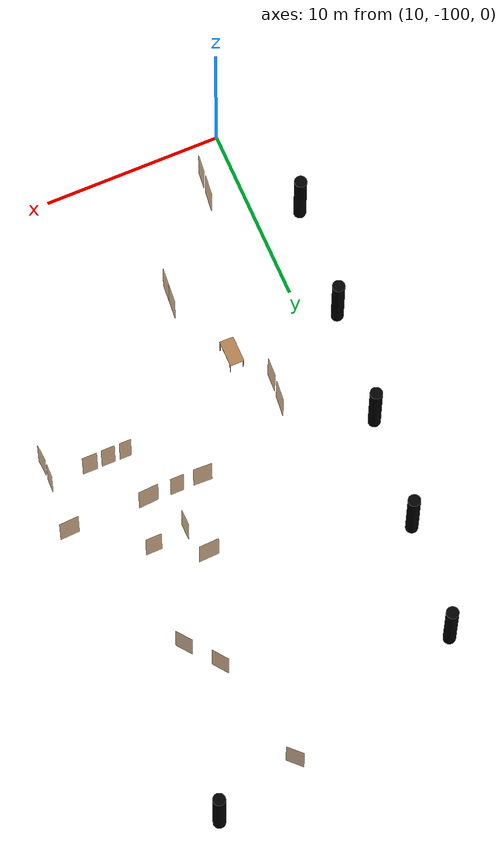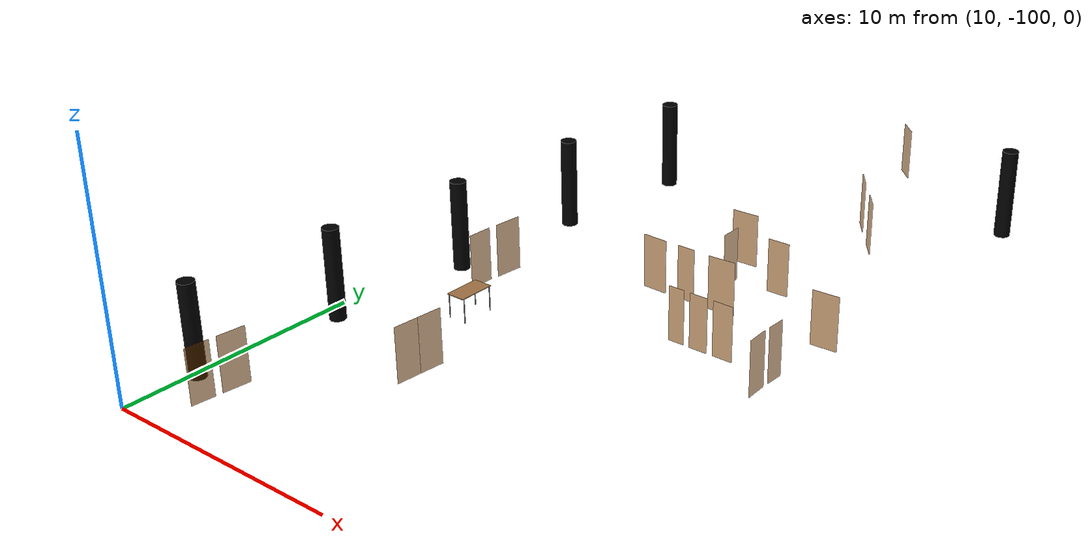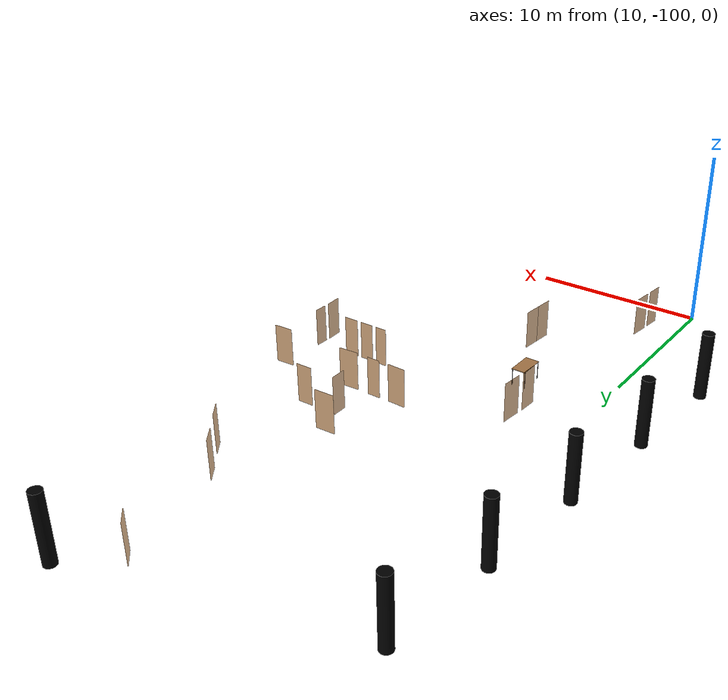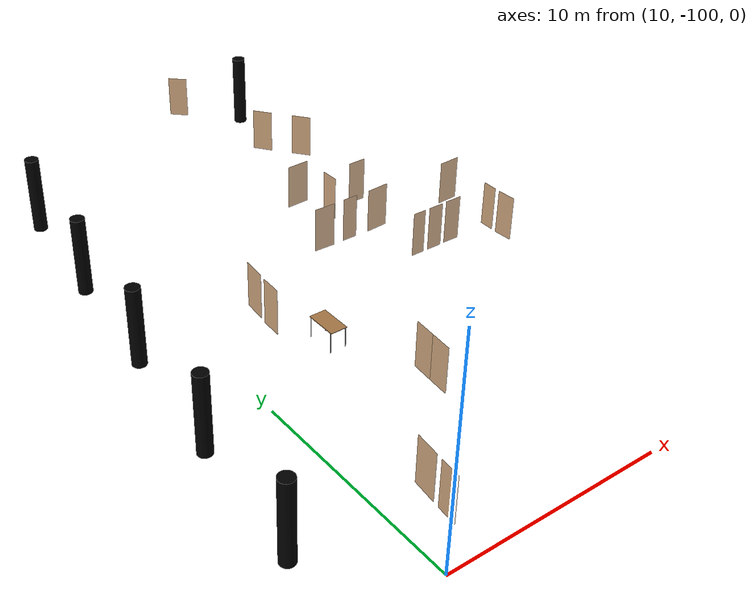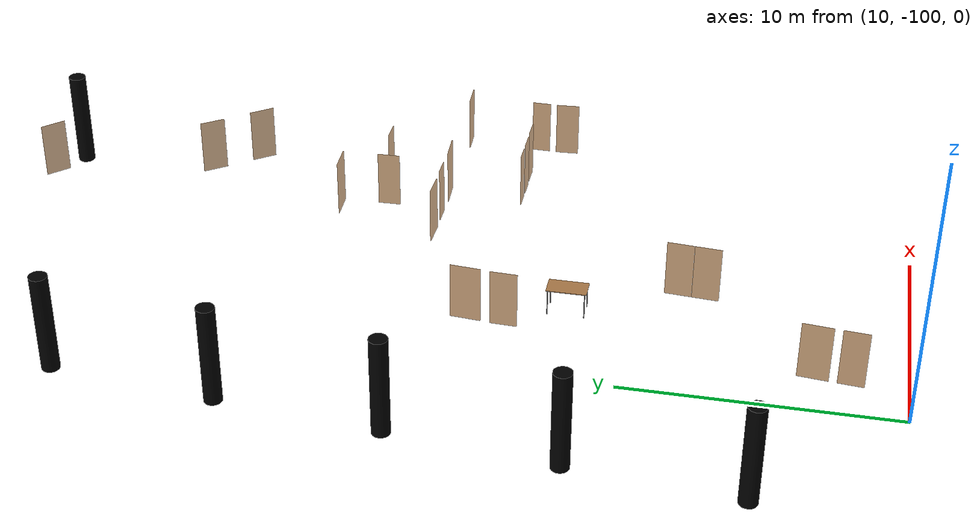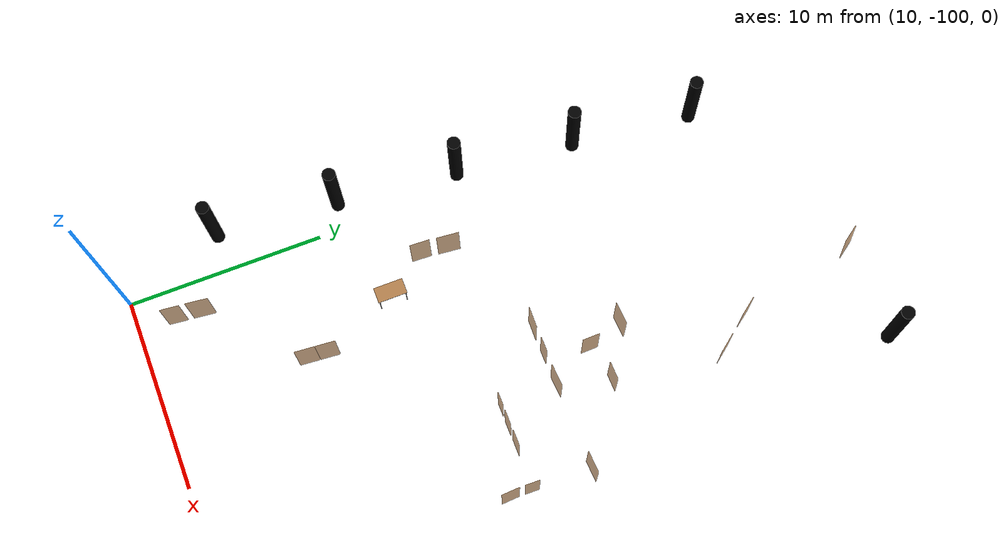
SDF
<sdf version="1.7">
 <world name="world">
  <model name="OpenRobotics/Table">
   <static>1</static>
   <link name="link">
    <collision name="surface">
     <pose>0 0 1 0 -0 0</pose>
     <geometry><box><size>1.5 0.8 0.03</size></box></geometry>
     <surface><friction><ode><mu>0.6</mu><mu2>0.6</mu2></ode></friction></surface>
    </collision>
    <visual name="visual1">
     <pose>0 0 1 0 -0 0</pose>
     <geometry><box><size>1.5 0.8 0.03</size></box></geometry>
     <material>
      <script><uri>file://media/materials/scripts/gazebo.material</uri><name>Gazebo/Wood</name></script>
     </material>
    </visual>
    <collision name="front_left_leg_c">
     <pose>0.68 0.38 0.5 0 -0 0</pose>
     <geometry><cylinder><radius>0.02</radius><length>1</length></cylinder></geometry>
    </collision>
    <visual name="front_left_leg">
     <pose>0.68 0.38 0.5 0 -0 0</pose>
     <geometry><cylinder><radius>0.02</radius><length>1</length></cylinder></geometry>
     <material>
      <script><uri>file://media/materials/scripts/gazebo.material</uri><name>Gazebo/Grey</name></script>
     </material>
    </visual>
    <collision name="front_right_leg_c">
     <pose>0.68 -0.38 0.5 0 -0 0</pose>
     <geometry><cylinder><radius>0.02</radius><length>1</length></cylinder></geometry>
    </collision>
    <visual name="front_right_leg">
     <pose>0.68 -0.38 0.5 0 -0 0</pose>
     <geometry><cylinder><radius>0.02</radius><length>1</length></cylinder></geometry>
     <material>
      <script><uri>file://media/materials/scripts/gazebo.material</uri><name>Gazebo/Grey</name></script>
     </material>
    </visual>
    <collision name="back_right_leg_c">
     <pose>-0.68 -0.38 0.5 0 -0 0</pose>
     <geometry><cylinder><radius>0.02</radius><length>1</length></cylinder></geometry>
    </collision>
    <visual name="back_right_leg">
     <pose>-0.68 -0.38 0.5 0 -0 0</pose>
     <geometry><cylinder><radius>0.02</radius><length>1</length></cylinder></geometry>
     <material>
      <script><uri>file://media/materials/scripts/gazebo.material</uri><name>Gazebo/Grey</name></script>
     </material>
    </visual>
    <collision name="back_left_leg_c">
     <pose>-0.68 0.38 0.5 0 -0 0</pose>
     <geometry><cylinder><radius>0.02</radius><length>1</length></cylinder></geometry>
    </collision>
    <visual name="back_left_leg">
     <pose>-0.68 0.38 0.5 0 -0 0</pose>
     <geometry><cylinder><radius>0.02</radius><length>1</length></cylinder></geometry>
     <material>
      <script><uri>file://media/materials/scripts/gazebo.material</uri><name>Gazebo/Grey</name></script>
     </material>
    </visual>
   </link>
   <pose>14.3878 -87.6644 0 0 -0 1.5708</pose>
  </model>
  <model name="D50">
   <pose>20.3197 -65.4707 0 0 -0 2.36139</pose>
   <link name="right">
    <pose>0 0 1.11 0 -0 0</pose>
    <visual name="right_visual">
     <geometry><box><size>1.00906 0.03 2.2</size></box></geometry>
     <material><ambient>0.5 0.25 0 0.6</ambient><diffuse>0.5 0.25 0 0.6</diffuse></material>
    </visual>
    <collision name="right_collision">
     <geometry><box><size>1.00906 0.03 2.2</size></box></geometry>
     <surface><contact><collide_bitmask>2</collide_bitmask></contact></surface>
    </collision>
    <inertial>
     <mass>50</mass>
     <inertia><ixx>20.1704</ixx><iyy>24.4092</iyy><izz>4.24628</izz><ixy>0</ixy><ixz>0</ixz><iyz>0</iyz></inertia>
    </inertial>
   </link>
   <joint name="right_joint" type="revolute">
    <parent>world</parent>
    <child>right</child>
    <axis>
     <xyz>0 0 -1</xyz>
     <limit><lower>0</lower><upper>1.57</upper></limit>
     <dynamics><spring_reference>0</spring_reference><spring_stiffness>0</spring_stiffness></dynamics>
    </axis>
    <pose>0.509531 0 0 0 -0 0</pose>
   </joint>
   <plugin name="door_D50" filename="libdoor.so">
    <v_max_door>0.5</v_max_door>
    <a_max_door>0.3</a_max_door>
    <a_nom_door>0.15</a_nom_door>
    <dx_min_door>0.01</dx_min_door>
    <f_max_door>500.0</f_max_door>
    <door name="D50" type="SwingDoor" left_joint_name="empty_joint" right_joint_name="right_joint"/>
   </plugin>
  </model>
  <model name="D51">
   <pose>21.8331 -71.7759 0 0 -0 -0.930625</pose>
   <link name="right">
    <pose>0 0 1.11 0 -0 0</pose>
    <visual name="right_visual">
     <geometry><box><size>1.01147 0.03 2.2</size></box></geometry>
     <material><ambient>0.5 0.25 0 0.6</ambient><diffuse>0.5 0.25 0 0.6</diffuse></material>
    </visual>
    <collision name="right_collision">
     <geometry><box><size>1.01147 0.03 2.2</size></box></geometry>
     <surface><contact><collide_bitmask>2</collide_bitmask></contact></surface>
    </collision>
    <inertial>
     <mass>50</mass>
     <inertia><ixx>20.1704</ixx><iyy>24.4294</iyy><izz>4.2665</izz><ixy>0</ixy><ixz>0</ixz><iyz>0</iyz></inertia>
    </inertial>
   </link>
   <joint name="right_joint" type="revolute">
    <parent>world</parent>
    <child>right</child>
    <axis>
     <xyz>0 0 -1</xyz>
     <limit><lower>0</lower><upper>1.57</upper></limit>
     <dynamics><spring_reference>0</spring_reference><spring_stiffness>0</spring_stiffness></dynamics>
    </axis>
    <pose>0.510732 0 0 0 -0 0</pose>
   </joint>
   <plugin name="door_D51" filename="libdoor.so">
    <v_max_door>0.5</v_max_door>
    <a_max_door>0.3</a_max_door>
    <a_nom_door>0.15</a_nom_door>
    <dx_min_door>0.01</dx_min_door>
    <f_max_door>500.0</f_max_door>
    <door name="D51" type="SwingDoor" left_joint_name="empty_joint" right_joint_name="right_joint"/>
   </plugin>
  </model>
  <model name="D52">
   <pose>23.1618 -73.4679 0 0 -0 2.22725</pose>
   <link name="right">
    <pose>0 0 1.11 0 -0 0</pose>
    <visual name="right_visual">
     <geometry><box><size>1.00368 0.03 2.2</size></box></geometry>
     <material><ambient>0.5 0.25 0 0.6</ambient><diffuse>0.5 0.25 0 0.6</diffuse></material>
    </visual>
    <collision name="right_collision">
     <geometry><box><size>1.00368 0.03 2.2</size></box></geometry>
     <surface><contact><collide_bitmask>2</collide_bitmask></contact></surface>
    </collision>
    <inertial>
     <mass>50</mass>
     <inertia><ixx>20.1704</ixx><iyy>24.364</iyy><izz>4.20111</izz><ixy>0</ixy><ixz>0</ixz><iyz>0</iyz></inertia>
    </inertial>
   </link>
   <joint name="right_joint" type="revolute">
    <parent>world</parent>
    <child>right</child>
    <axis>
     <xyz>0 0 1</xyz>
     <limit><lower>0</lower><upper>1.57</upper></limit>
     <dynamics><spring_reference>0</spring_reference><spring_stiffness>0</spring_stiffness></dynamics>
    </axis>
    <pose>0.506838 0 0 0 -0 0</pose>
   </joint>
   <plugin name="door_D52" filename="libdoor.so">
    <v_max_door>0.5</v_max_door>
    <a_max_door>0.3</a_max_door>
    <a_nom_door>0.15</a_nom_door>
    <dx_min_door>0.01</dx_min_door>
    <f_max_door>500.0</f_max_door>
    <door name="D52" type="SwingDoor" left_joint_name="empty_joint" right_joint_name="right_joint"/>
   </plugin>
  </model>
  <model name="D53">
   <pose>20.5475 -79.4904 0 0 0 -1.55351</pose>
   <link name="right">
    <pose>0 0 1.11 0 -0 0</pose>
    <visual name="right_visual">
     <geometry><box><size>0.875661 0.03 2.2</size></box></geometry>
     <material><ambient>0.5 0.25 0 0.6</ambient><diffuse>0.5 0.25 0 0.6</diffuse></material>
    </visual>
    <collision name="right_collision">
     <geometry><box><size>0.875661 0.03 2.2</size></box></geometry>
     <surface><contact><collide_bitmask>2</collide_bitmask></contact></surface>
    </collision>
    <inertial>
     <mass>50</mass>
     <inertia><ixx>20.1704</ixx><iyy>23.3616</iyy><izz>3.19868</izz><ixy>0</ixy><ixz>0</ixz><iyz>0</iyz></inertia>
    </inertial>
   </link>
   <joint name="right_joint" type="revolute">
    <parent>world</parent>
    <child>right</child>
    <axis>
     <xyz>0 0 1</xyz>
     <limit><lower>0</lower><upper>1.57</upper></limit>
     <dynamics><spring_reference>0</spring_reference><spring_stiffness>0</spring_stiffness></dynamics>
    </axis>
    <pose>0.442831 0 0 0 -0 0</pose>
   </joint>
   <plugin name="door_D53" filename="libdoor.so">
    <v_max_door>0.5</v_max_door>
    <a_max_door>0.3</a_max_door>
    <a_nom_door>0.15</a_nom_door>
    <dx_min_door>0.01</dx_min_door>
    <f_max_door>500.0</f_max_door>
    <door name="D53" type="SwingDoor" left_joint_name="empty_joint" right_joint_name="right_joint"/>
   </plugin>
  </model>
  <model name="D54">
   <pose>19.9595 -77.6777 0 0 -0 0.042374</pose>
   <link name="right">
    <pose>0 0 1.11 0 -0 0</pose>
    <visual name="right_visual">
     <geometry><box><size>1.13277 0.03 2.2</size></box></geometry>
     <material><ambient>0.5 0.25 0 0.6</ambient><diffuse>0.5 0.25 0 0.6</diffuse></material>
    </visual>
    <collision name="right_collision">
     <geometry><box><size>1.13277 0.03 2.2</size></box></geometry>
     <surface><contact><collide_bitmask>2</collide_bitmask></contact></surface>
    </collision>
    <inertial>
     <mass>50</mass>
     <inertia><ixx>20.1704</ixx><iyy>25.5132</iyy><izz>5.35028</izz><ixy>0</ixy><ixz>0</ixz><iyz>0</iyz></inertia>
    </inertial>
   </link>
   <joint name="right_joint" type="revolute">
    <parent>world</parent>
    <child>right</child>
    <axis>
     <xyz>0 0 -1</xyz>
     <limit><lower>0</lower><upper>1.57</upper></limit>
     <dynamics><spring_reference>0</spring_reference><spring_stiffness>0</spring_stiffness></dynamics>
    </axis>
    <pose>0.571385 0 0 0 -0 0</pose>
   </joint>
   <plugin name="door_D54" filename="libdoor.so">
    <v_max_door>0.5</v_max_door>
    <a_max_door>0.3</a_max_door>
    <a_nom_door>0.15</a_nom_door>
    <dx_min_door>0.01</dx_min_door>
    <f_max_door>500.0</f_max_door>
    <door name="D54" type="SwingDoor" left_joint_name="empty_joint" right_joint_name="right_joint"/>
   </plugin>
  </model>
  <model name="D55">
   <pose>22.4934 -79.1184 0 0 -0 -3.12599</pose>
   <link name="right">
    <pose>0 0 1.11 0 -0 0</pose>
    <visual name="right_visual">
     <geometry><box><size>0.905797 0.03 2.2</size></box></geometry>
     <material><ambient>0.5 0.25 0 0.6</ambient><diffuse>0.5 0.25 0 0.6</diffuse></material>
    </visual>
    <collision name="right_collision">
     <geometry><box><size>0.905797 0.03 2.2</size></box></geometry>
     <surface><contact><collide_bitmask>2</collide_bitmask></contact></surface>
    </collision>
    <inertial>
     <mass>50</mass>
     <inertia><ixx>20.1704</ixx><iyy>23.5853</iyy><izz>3.42237</izz><ixy>0</ixy><ixz>0</ixz><iyz>0</iyz></inertia>
    </inertial>
   </link>
   <joint name="right_joint" type="revolute">
    <parent>world</parent>
    <child>right</child>
    <axis>
     <xyz>0 0 1</xyz>
     <limit><lower>0</lower><upper>1.57</upper></limit>
     <dynamics><spring_reference>0</spring_reference><spring_stiffness>0</spring_stiffness></dynamics>
    </axis>
    <pose>0.457898 0 0 0 -0 0</pose>
   </joint>
   <plugin name="door_D55" filename="libdoor.so">
    <v_max_door>0.5</v_max_door>
    <a_max_door>0.3</a_max_door>
    <a_nom_door>0.15</a_nom_door>
    <dx_min_door>0.01</dx_min_door>
    <f_max_door>500.0</f_max_door>
    <door name="D55" type="SwingDoor" left_joint_name="empty_joint" right_joint_name="right_joint"/>
   </plugin>
  </model>
  <model name="D56">
   <pose>26.222 -81.7104 -0 0 -0 0.051731</pose>
   <link name="right">
    <pose>0 0 1.11 0 -0 0</pose>
    <visual name="right_visual">
     <geometry><box><size>1.08843 0.03 2.2</size></box></geometry>
     <material><ambient>0.5 0.25 0 0.6</ambient><diffuse>0.5 0.25 0 0.6</diffuse></material>
    </visual>
    <collision name="right_collision">
     <geometry><box><size>1.08843 0.03 2.2</size></box></geometry>
     <surface><contact><collide_bitmask>2</collide_bitmask></contact></surface>
    </collision>
    <inertial>
     <mass>50</mass>
     <inertia><ixx>20.1704</ixx><iyy>25.1029</iyy><izz>4.93994</izz><ixy>0</ixy><ixz>0</ixz><iyz>0</iyz></inertia>
    </inertial>
   </link>
   <joint name="right_joint" type="revolute">
    <parent>world</parent>
    <child>right</child>
    <axis>
     <xyz>0 0 1</xyz>
     <limit><lower>0</lower><upper>1.57</upper></limit>
     <dynamics><spring_reference>0</spring_reference><spring_stiffness>0</spring_stiffness></dynamics>
    </axis>
    <pose>0.549216 0 0 0 -0 0</pose>
   </joint>
   <plugin name="door_D56" filename="libdoor.so">
    <v_max_door>0.5</v_max_door>
    <a_max_door>0.3</a_max_door>
    <a_nom_door>0.15</a_nom_door>
    <dx_min_door>0.01</dx_min_door>
    <f_max_door>500.0</f_max_door>
    <door name="D56" type="SwingDoor" left_joint_name="empty_joint" right_joint_name="right_joint"/>
   </plugin>
  </model>
  <model name="D57">
   <pose>21.698 -81.7366 0 0 0 -3.07997</pose>
   <link name="right">
    <pose>0 0 1.11 0 -0 0</pose>
    <visual name="right_visual">
     <geometry><box><size>1.13323 0.03 2.2</size></box></geometry>
     <material><ambient>0.5 0.25 0 0.6</ambient><diffuse>0.5 0.25 0 0.6</diffuse></material>
    </visual>
    <collision name="right_collision">
     <geometry><box><size>1.13323 0.03 2.2</size></box></geometry>
     <surface><contact><collide_bitmask>2</collide_bitmask></contact></surface>
    </collision>
    <inertial>
     <mass>50</mass>
     <inertia><ixx>20.1704</ixx><iyy>25.5176</iyy><izz>5.35466</izz><ixy>0</ixy><ixz>0</ixz><iyz>0</iyz></inertia>
    </inertial>
   </link>
   <joint name="right_joint" type="revolute">
    <parent>world</parent>
    <child>right</child>
    <axis>
     <xyz>0 0 -1</xyz>
     <limit><lower>0</lower><upper>1.57</upper></limit>
     <dynamics><spring_reference>0</spring_reference><spring_stiffness>0</spring_stiffness></dynamics>
    </axis>
    <pose>0.571617 0 0 0 -0 0</pose>
   </joint>
   <plugin name="door_D57" filename="libdoor.so">
    <v_max_door>0.5</v_max_door>
    <a_max_door>0.3</a_max_door>
    <a_nom_door>0.15</a_nom_door>
    <dx_min_door>0.01</dx_min_door>
    <f_max_door>500.0</f_max_door>
    <door name="D57" type="SwingDoor" left_joint_name="empty_joint" right_joint_name="right_joint"/>
   </plugin>
  </model>
  <model name="D58">
   <pose>20.0583 -81.7461 0 0 -0 3.14159</pose>
   <link name="right">
    <pose>0 0 1.11 0 -0 0</pose>
    <visual name="right_visual">
     <geometry><box><size>0.745834 0.03 2.2</size></box></geometry>
     <material><ambient>0.5 0.25 0 0.6</ambient><diffuse>0.5 0.25 0 0.6</diffuse></material>
    </visual>
    <collision name="right_collision">
     <geometry><box><size>0.745834 0.03 2.2</size></box></geometry>
     <surface><contact><collide_bitmask>2</collide_bitmask></contact></surface>
    </collision>
    <inertial>
     <mass>50</mass>
     <inertia><ixx>20.1704</ixx><iyy>22.4845</iyy><izz>2.32154</izz><ixy>0</ixy><ixz>0</ixz><iyz>0</iyz></inertia>
    </inertial>
   </link>
   <joint name="right_joint" type="revolute">
    <parent>world</parent>
    <child>right</child>
    <axis>
     <xyz>0 0 -1</xyz>
     <limit><lower>0</lower><upper>1.57</upper></limit>
     <dynamics><spring_reference>0</spring_reference><spring_stiffness>0</spring_stiffness></dynamics>
    </axis>
    <pose>0.377917 0 0 0 -0 0</pose>
   </joint>
   <plugin name="door_D58" filename="libdoor.so">
    <v_max_door>0.5</v_max_door>
    <a_max_door>0.3</a_max_door>
    <a_nom_door>0.15</a_nom_door>
    <dx_min_door>0.01</dx_min_door>
    <f_max_door>500.0</f_max_door>
    <door name="D58" type="SwingDoor" left_joint_name="empty_joint" right_joint_name="right_joint"/>
   </plugin>
  </model>
  <model name="D59">
   <pose>18.5872 -81.7457 0 0 -0 3.11116</pose>
   <link name="right">
    <pose>0 0 1.11 0 -0 0</pose>
    <visual name="right_visual">
     <geometry><box><size>1.05197 0.03 2.2</size></box></geometry>
     <material><ambient>0.5 0.25 0 0.6</ambient><diffuse>0.5 0.25 0 0.6</diffuse></material>
    </visual>
    <collision name="right_collision">
     <geometry><box><size>1.05197 0.03 2.2</size></box></geometry>
     <surface><contact><collide_bitmask>2</collide_bitmask></contact></surface>
    </collision>
    <inertial>
     <mass>50</mass>
     <inertia><ixx>20.1704</ixx><iyy>24.7777</iyy><izz>4.61475</izz><ixy>0</ixy><ixz>0</ixz><iyz>0</iyz></inertia>
    </inertial>
   </link>
   <joint name="right_joint" type="revolute">
    <parent>world</parent>
    <child>right</child>
    <axis>
     <xyz>0 0 1</xyz>
     <limit><lower>0</lower><upper>1.57</upper></limit>
     <dynamics><spring_reference>0</spring_reference><spring_stiffness>0</spring_stiffness></dynamics>
    </axis>
    <pose>0.530985 0 0 0 -0 0</pose>
   </joint>
   <plugin name="door_D59" filename="libdoor.so">
    <v_max_door>0.5</v_max_door>
    <a_max_door>0.3</a_max_door>
    <a_nom_door>0.15</a_nom_door>
    <dx_min_door>0.01</dx_min_door>
    <f_max_door>500.0</f_max_door>
    <door name="D59" type="SwingDoor" left_joint_name="empty_joint" right_joint_name="right_joint"/>
   </plugin>
  </model>
  <model name="D60">
   <pose>26.1055 -84.7135 -0 0 -0 -1.59639</pose>
   <link name="right">
    <pose>0 0 1.11 0 -0 0</pose>
    <visual name="right_visual">
     <geometry><box><size>0.734288 0.03 2.2</size></box></geometry>
     <material><ambient>0.5 0.25 0 0.6</ambient><diffuse>0.5 0.25 0 0.6</diffuse></material>
    </visual>
    <collision name="right_collision">
     <geometry><box><size>0.734288 0.03 2.2</size></box></geometry>
     <surface><contact><collide_bitmask>2</collide_bitmask></contact></surface>
    </collision>
    <inertial>
     <mass>50</mass>
     <inertia><ixx>20.1704</ixx><iyy>22.4132</iyy><izz>2.25033</izz><ixy>0</ixy><ixz>0</ixz><iyz>0</iyz></inertia>
    </inertial>
   </link>
   <joint name="right_joint" type="revolute">
    <parent>world</parent>
    <child>right</child>
    <axis>
     <xyz>0 0 1</xyz>
     <limit><lower>0</lower><upper>1.57</upper></limit>
     <dynamics><spring_reference>0</spring_reference><spring_stiffness>0</spring_stiffness></dynamics>
    </axis>
    <pose>0.372144 0 0 0 -0 0</pose>
   </joint>
   <plugin name="door_D60" filename="libdoor.so">
    <v_max_door>0.5</v_max_door>
    <a_max_door>0.3</a_max_door>
    <a_nom_door>0.15</a_nom_door>
    <dx_min_door>0.01</dx_min_door>
    <f_max_door>500.0</f_max_door>
    <door name="D60" type="SwingDoor" left_joint_name="empty_joint" right_joint_name="right_joint"/>
   </plugin>
  </model>
  <model name="D61">
   <pose>26.1077 -85.81 -0 -0 -0 -1.51837</pose>
   <link name="right">
    <pose>0 0 1.11 0 -0 0</pose>
    <visual name="right_visual">
     <geometry><box><size>0.916027 0.03 2.2</size></box></geometry>
     <material><ambient>0.5 0.25 0 0.6</ambient><diffuse>0.5 0.25 0 0.6</diffuse></material>
    </visual>
    <collision name="right_collision">
     <geometry><box><size>0.916027 0.03 2.2</size></box></geometry>
     <surface><contact><collide_bitmask>2</collide_bitmask></contact></surface>
    </collision>
    <inertial>
     <mass>50</mass>
     <inertia><ixx>20.1704</ixx><iyy>23.6629</iyy><izz>3.50002</izz><ixy>0</ixy><ixz>0</ixz><iyz>0</iyz></inertia>
    </inertial>
   </link>
   <joint name="right_joint" type="revolute">
    <parent>world</parent>
    <child>right</child>
    <axis>
     <xyz>0 0 1</xyz>
     <limit><lower>0</lower><upper>1.57</upper></limit>
     <dynamics><spring_reference>0</spring_reference><spring_stiffness>0</spring_stiffness></dynamics>
    </axis>
    <pose>0.463014 0 0 0 -0 0</pose>
   </joint>
   <plugin name="door_D61" filename="libdoor.so">
    <v_max_door>0.5</v_max_door>
    <a_max_door>0.3</a_max_door>
    <a_nom_door>0.15</a_nom_door>
    <dx_min_door>0.01</dx_min_door>
    <f_max_door>500.0</f_max_door>
    <door name="D61" type="SwingDoor" left_joint_name="empty_joint" right_joint_name="right_joint"/>
   </plugin>
  </model>
  <model name="D62">
   <pose>23.8362 -84.654 0 0 0 -0.002275</pose>
   <link name="right">
    <pose>0 0 1.11 0 -0 0</pose>
    <visual name="right_visual">
     <geometry><box><size>0.837212 0.03 2.2</size></box></geometry>
     <material><ambient>0.5 0.25 0 0.6</ambient><diffuse>0.5 0.25 0 0.6</diffuse></material>
    </visual>
    <collision name="right_collision">
     <geometry><box><size>0.837212 0.03 2.2</size></box></geometry>
     <surface><contact><collide_bitmask>2</collide_bitmask></contact></surface>
    </collision>
    <inertial>
     <mass>50</mass>
     <inertia><ixx>20.1704</ixx><iyy>23.0872</iyy><izz>2.92427</izz><ixy>0</ixy><ixz>0</ixz><iyz>0</iyz></inertia>
    </inertial>
   </link>
   <joint name="right_joint" type="revolute">
    <parent>world</parent>
    <child>right</child>
    <axis>
     <xyz>0 0 1</xyz>
     <limit><lower>0</lower><upper>1.57</upper></limit>
     <dynamics><spring_reference>0</spring_reference><spring_stiffness>0</spring_stiffness></dynamics>
    </axis>
    <pose>0.423606 0 0 0 -0 0</pose>
   </joint>
   <plugin name="door_D62" filename="libdoor.so">
    <v_max_door>0.5</v_max_door>
    <a_max_door>0.3</a_max_door>
    <a_nom_door>0.15</a_nom_door>
    <dx_min_door>0.01</dx_min_door>
    <f_max_door>500.0</f_max_door>
    <door name="D62" type="SwingDoor" left_joint_name="empty_joint" right_joint_name="right_joint"/>
   </plugin>
  </model>
  <model name="D63">
   <pose>22.7839 -84.6684 0 0 -0 0</pose>
   <link name="right">
    <pose>0 0 1.11 0 -0 0</pose>
    <visual name="right_visual">
     <geometry><box><size>0.764994 0.03 2.2</size></box></geometry>
     <material><ambient>0.5 0.25 0 0.6</ambient><diffuse>0.5 0.25 0 0.6</diffuse></material>
    </visual>
    <collision name="right_collision">
     <geometry><box><size>0.764994 0.03 2.2</size></box></geometry>
     <surface><contact><collide_bitmask>2</collide_bitmask></contact></surface>
    </collision>
    <inertial>
     <mass>50</mass>
     <inertia><ixx>20.1704</ixx><iyy>22.6051</iyy><izz>2.44215</izz><ixy>0</ixy><ixz>0</ixz><iyz>0</iyz></inertia>
    </inertial>
   </link>
   <joint name="right_joint" type="revolute">
    <parent>world</parent>
    <child>right</child>
    <axis>
     <xyz>0 0 1</xyz>
     <limit><lower>0</lower><upper>1.57</upper></limit>
     <dynamics><spring_reference>0</spring_reference><spring_stiffness>0</spring_stiffness></dynamics>
    </axis>
    <pose>0.387497 0 0 0 -0 0</pose>
   </joint>
   <plugin name="door_D63" filename="libdoor.so">
    <v_max_door>0.5</v_max_door>
    <a_max_door>0.3</a_max_door>
    <a_nom_door>0.15</a_nom_door>
    <dx_min_door>0.01</dx_min_door>
    <f_max_door>500.0</f_max_door>
    <door name="D63" type="SwingDoor" left_joint_name="empty_joint" right_joint_name="right_joint"/>
   </plugin>
  </model>
  <model name="D64">
   <pose>21.8034 -84.6638 0 0 -0 0</pose>
   <link name="right">
    <pose>0 0 1.11 0 -0 0</pose>
    <visual name="right_visual">
     <geometry><box><size>0.658086 0.03 2.2</size></box></geometry>
     <material><ambient>0.5 0.25 0 0.6</ambient><diffuse>0.5 0.25 0 0.6</diffuse></material>
    </visual>
    <collision name="right_collision">
     <geometry><box><size>0.658086 0.03 2.2</size></box></geometry>
     <surface><contact><collide_bitmask>2</collide_bitmask></contact></surface>
    </collision>
    <inertial>
     <mass>50</mass>
     <inertia><ixx>20.1704</ixx><iyy>21.9712</iyy><izz>1.80824</izz><ixy>0</ixy><ixz>0</ixz><iyz>0</iyz></inertia>
    </inertial>
   </link>
   <joint name="right_joint" type="revolute">
    <parent>world</parent>
    <child>right</child>
    <axis>
     <xyz>0 0 1</xyz>
     <limit><lower>0</lower><upper>1.57</upper></limit>
     <dynamics><spring_reference>0</spring_reference><spring_stiffness>0</spring_stiffness></dynamics>
    </axis>
    <pose>0.334043 0 0 0 -0 0</pose>
   </joint>
   <plugin name="door_D64" filename="libdoor.so">
    <v_max_door>0.5</v_max_door>
    <a_max_door>0.3</a_max_door>
    <a_nom_door>0.15</a_nom_door>
    <dx_min_door>0.01</dx_min_door>
    <f_max_door>500.0</f_max_door>
    <door name="D64" type="SwingDoor" left_joint_name="empty_joint" right_joint_name="right_joint"/>
   </plugin>
  </model>
  <model name="D66">
   <pose>13.1239 -84.1144 0 0 -0 -1.66462</pose>
   <link name="right">
    <pose>0 0 1.11 0 -0 0</pose>
    <visual name="right_visual">
     <geometry><box><size>1.14567 0.03 2.2</size></box></geometry>
     <material><ambient>0.5 0.25 0 0.6</ambient><diffuse>0.5 0.25 0 0.6</diffuse></material>
    </visual>
    <collision name="right_collision">
     <geometry><box><size>1.14567 0.03 2.2</size></box></geometry>
     <surface><contact><collide_bitmask>2</collide_bitmask></contact></surface>
    </collision>
    <inertial>
     <mass>50</mass>
     <inertia><ixx>20.1704</ixx><iyy>25.6357</iyy><izz>5.47274</izz><ixy>0</ixy><ixz>0</ixz><iyz>0</iyz></inertia>
    </inertial>
   </link>
   <joint name="right_joint" type="revolute">
    <parent>world</parent>
    <child>right</child>
    <axis>
     <xyz>0 0 -1</xyz>
     <limit><lower>0</lower><upper>1.57</upper></limit>
     <dynamics><spring_reference>0</spring_reference><spring_stiffness>0</spring_stiffness></dynamics>
    </axis>
    <pose>0.577835 0 0 0 -0 0</pose>
   </joint>
   <plugin name="door_D66" filename="libdoor.so">
    <v_max_door>0.5</v_max_door>
    <a_max_door>0.3</a_max_door>
    <a_nom_door>0.15</a_nom_door>
    <dx_min_door>0.01</dx_min_door>
    <f_max_door>500.0</f_max_door>
    <door name="D66" type="SwingDoor" left_joint_name="empty_joint" right_joint_name="right_joint"/>
   </plugin>
  </model>
  <model name="D67">
   <pose>12.9902 -85.542 -0 0 -0 1.52667</pose>
   <link name="right">
    <pose>0 0 1.11 0 -0 0</pose>
    <visual name="right_visual">
     <geometry><box><size>1.01291 0.03 2.2</size></box></geometry>
     <material><ambient>0.5 0.25 0 0.6</ambient><diffuse>0.5 0.25 0 0.6</diffuse></material>
    </visual>
    <collision name="right_collision">
     <geometry><box><size>1.01291 0.03 2.2</size></box></geometry>
     <surface><contact><collide_bitmask>2</collide_bitmask></contact></surface>
    </collision>
    <inertial>
     <mass>50</mass>
     <inertia><ixx>20.1704</ixx><iyy>24.4416</iyy><izz>4.27868</izz><ixy>0</ixy><ixz>0</ixz><iyz>0</iyz></inertia>
    </inertial>
   </link>
   <joint name="right_joint" type="revolute">
    <parent>world</parent>
    <child>right</child>
    <axis>
     <xyz>0 0 1</xyz>
     <limit><lower>0</lower><upper>1.57</upper></limit>
     <dynamics><spring_reference>0</spring_reference><spring_stiffness>0</spring_stiffness></dynamics>
    </axis>
    <pose>0.511454 0 0 0 -0 0</pose>
   </joint>
   <plugin name="door_D67" filename="libdoor.so">
    <v_max_door>0.5</v_max_door>
    <a_max_door>0.3</a_max_door>
    <a_nom_door>0.15</a_nom_door>
    <dx_min_door>0.01</dx_min_door>
    <f_max_door>500.0</f_max_door>
    <door name="D67" type="SwingDoor" left_joint_name="empty_joint" right_joint_name="right_joint"/>
   </plugin>
  </model>
  <model name="D68">
   <pose>11.9035 -96.672 0 0 -0 -1.68287</pose>
   <link name="right">
    <pose>0 0 1.11 0 -0 0</pose>
    <visual name="right_visual">
     <geometry><box><size>1.12127 0.03 2.2</size></box></geometry>
     <material><ambient>0.5 0.25 0 0.6</ambient><diffuse>0.5 0.25 0 0.6</diffuse></material>
    </visual>
    <collision name="right_collision">
     <geometry><box><size>1.12127 0.03 2.2</size></box></geometry>
     <surface><contact><collide_bitmask>2</collide_bitmask></contact></surface>
    </collision>
    <inertial>
     <mass>50</mass>
     <inertia><ixx>20.1704</ixx><iyy>25.4052</iyy><izz>5.24227</izz><ixy>0</ixy><ixz>0</ixz><iyz>0</iyz></inertia>
    </inertial>
   </link>
   <joint name="right_joint" type="revolute">
    <parent>world</parent>
    <child>right</child>
    <axis>
     <xyz>0 0 -1</xyz>
     <limit><lower>0</lower><upper>1.57</upper></limit>
     <dynamics><spring_reference>0</spring_reference><spring_stiffness>0</spring_stiffness></dynamics>
    </axis>
    <pose>0.565635 0 0 0 -0 0</pose>
   </joint>
   <plugin name="door_D68" filename="libdoor.so">
    <v_max_door>0.5</v_max_door>
    <a_max_door>0.3</a_max_door>
    <a_nom_door>0.15</a_nom_door>
    <dx_min_door>0.01</dx_min_door>
    <f_max_door>500.0</f_max_door>
    <door name="D68" type="SwingDoor" left_joint_name="empty_joint" right_joint_name="right_joint"/>
   </plugin>
  </model>
  <model name="D69">
   <pose>11.7647 -97.9934 -0 0 -0 1.47115</pose>
   <link name="right">
    <pose>0 0 1.11 0 -0 0</pose>
    <visual name="right_visual">
     <geometry><box><size>0.945 0.03 2.2</size></box></geometry>
     <material><ambient>0.5 0.25 0 0.6</ambient><diffuse>0.5 0.25 0 0.6</diffuse></material>
    </visual>
    <collision name="right_collision">
     <geometry><box><size>0.945 0.03 2.2</size></box></geometry>
     <surface><contact><collide_bitmask>2</collide_bitmask></contact></surface>
    </collision>
    <inertial>
     <mass>50</mass>
     <inertia><ixx>20.1704</ixx><iyy>23.8876</iyy><izz>3.72469</izz><ixy>0</ixy><ixz>0</ixz><iyz>0</iyz></inertia>
    </inertial>
   </link>
   <joint name="right_joint" type="revolute">
    <parent>world</parent>
    <child>right</child>
    <axis>
     <xyz>0 0 1</xyz>
     <limit><lower>0</lower><upper>1.57</upper></limit>
     <dynamics><spring_reference>0</spring_reference><spring_stiffness>0</spring_stiffness></dynamics>
    </axis>
    <pose>0.4775 0 0 0 -0 0</pose>
   </joint>
   <plugin name="door_D69" filename="libdoor.so">
    <v_max_door>0.5</v_max_door>
    <a_max_door>0.3</a_max_door>
    <a_nom_door>0.15</a_nom_door>
    <dx_min_door>0.01</dx_min_door>
    <f_max_door>500.0</f_max_door>
    <door name="D69" type="SwingDoor" left_joint_name="empty_joint" right_joint_name="right_joint"/>
   </plugin>
  </model>
  <model name="DH11">
   <pose>16.1739 -92.0447 -0 0 -0 1.48675</pose>
   <link name="right">
    <pose>0.510832 0 1.11 0 -0 0</pose>
    <visual name="right_visual">
     <geometry><box><size>1.01166 0.03 2.2</size></box></geometry>
     <material><ambient>0.5 0.25 0 0.6</ambient><diffuse>0.5 0.25 0 0.6</diffuse></material>
    </visual>
    <collision name="right_collision">
     <geometry><box><size>1.01166 0.03 2.2</size></box></geometry>
     <surface><contact><collide_bitmask>2</collide_bitmask></contact></surface>
    </collision>
    <inertial>
     <mass>50</mass>
     <inertia><ixx>20.1704</ixx><iyy>24.4311</iyy><izz>4.26818</izz><ixy>0</ixy><ixz>0</ixz><iyz>0</iyz></inertia>
    </inertial>
   </link>
   <joint name="right_joint" type="revolute">
    <parent>world</parent>
    <child>right</child>
    <axis>
     <xyz>0 0 -1</xyz>
     <limit><lower>0</lower><upper>1.57</upper></limit>
     <dynamics><spring_reference>0</spring_reference><spring_stiffness>0</spring_stiffness></dynamics>
    </axis>
    <pose>0.510832 0 0 0 -0 0</pose>
   </joint>
   <link name="left">
    <pose>-0.510832 0 1.11 0 -0 0</pose>
    <visual name="left_visual">
     <geometry><box><size>1.01166 0.03 2.2</size></box></geometry>
     <material><ambient>0.5 0.25 0 0.6</ambient><diffuse>0.5 0.25 0 0.6</diffuse></material>
    </visual>
    <collision name="left_collision">
     <geometry><box><size>1.01166 0.03 2.2</size></box></geometry>
     <surface><contact><collide_bitmask>2</collide_bitmask></contact></surface>
    </collision>
    <inertial>
     <mass>50</mass>
     <inertia><ixx>20.1704</ixx><iyy>24.4311</iyy><izz>4.26818</izz><ixy>0</ixy><ixz>0</ixz><iyz>0</iyz></inertia>
    </inertial>
   </link>
   <joint name="left_joint" type="revolute">
    <parent>world</parent>
    <child>left</child>
    <axis>
     <xyz>0 0 -1</xyz>
     <limit><lower>-1.57</lower><upper>0</upper></limit>
     <dynamics><spring_reference>0</spring_reference><spring_stiffness>0</spring_stiffness></dynamics>
    </axis>
    <pose>-0.510832 0 0 0 -0 0</pose>
   </joint>
   <plugin name="door_DH11" filename="libdoor.so">
    <v_max_door>0.5</v_max_door>
    <a_max_door>0.3</a_max_door>
    <a_nom_door>0.15</a_nom_door>
    <dx_min_door>0.01</dx_min_door>
    <f_max_door>500.0</f_max_door>
    <door name="DH11" type="DoubleSwingDoor" left_joint_name="left_joint" right_joint_name="right_joint"/>
   </plugin>
  </model>
  <model name="CylinderBlock_6">
   <link name="link">
    <inertial>
     <mass>1</mass>
     <inertia><ixx>1</ixx><ixy>0</ixy><ixz>0</ixz><iyy>1</iyy><iyz>0</iyz><izz>1</izz></inertia>
    </inertial>
    <visual name="visual">
     <geometry><cylinder><radius>0.35</radius><length>4.0</length></cylinder></geometry>
     <material>
      <shader type="pixel"><normal_map>__default__</normal_map></shader>
      <script><name>ModelPreview_1::link::visual_MATERIAL_</name><uri>__default__</uri></script>
      <ambient>0 0 0 1</ambient>
      <diffuse>0 0 0 1</diffuse>
      <specular>0 0 0 1</specular>
      <emissive>0 0 0 1</emissive>
     </material>
    </visual>
    <collision name="collision">
     <geometry><cylinder><radius>0.35</radius><length>4.0</length></cylinder></geometry>
     <surface>
      <friction>
       <ode><mu>1</mu><mu2>1</mu2><fdir1>0 0 0</fdir1><slip1>0</slip1><slip2>0</slip2></ode>
       <torsional>
        <coefficient>1</coefficient>
        <patch_radius>0</patch_radius>
        <surface_radius>0</surface_radius>
        <use_patch_radius>1</use_patch_radius>
        <ode><slip>0</slip></ode>
       </torsional>
      </friction>
      <bounce><restitution_coefficient>0</restitution_coefficient><threshold>1e+06</threshold></bounce>
      <contact>
       <collide_without_contact>0</collide_without_contact>
       <collide_without_contact_bitmask>1</collide_without_contact_bitmask>
       <collide_bitmask>1</collide_bitmask>
       <ode>
        <soft_cfm>0</soft_cfm>
        <soft_erp>0.2</soft_erp>
        <kp>1e+13</kp>
        <kd>1</kd>
        <max_vel>0.01</max_vel>
        <min_depth>0</min_depth>
       </ode>
       <bullet>
        <split_impulse>1</split_impulse>
        <split_impulse_penetration_threshold>-0.01</split_impulse_penetration_threshold>
        <soft_cfm>0</soft_cfm>
        <soft_erp>0.2</soft_erp>
        <kp>1e+13</kp>
        <kd>1</kd>
       </bullet>
      </contact>
     </surface>
    </collision>
   </link>
   <static>1</static>
   <pose>24.9313 -64.6538 0 0 -0 0</pose>
  </model>
  <model name="CylinderBlock_36">
   <link name="link">
    <inertial>
     <mass>1</mass>
     <inertia><ixx>1</ixx><ixy>0</ixy><ixz>0</ixz><iyy>1</iyy><iyz>0</iyz><izz>1</izz></inertia>
    </inertial>
    <visual name="visual">
     <geometry><cylinder><radius>0.35</radius><length>4.0</length></cylinder></geometry>
     <material>
      <shader type="pixel"><normal_map>__default__</normal_map></shader>
      <script><name>ModelPreview_1::link::visual_MATERIAL_</name><uri>__default__</uri></script>
      <ambient>0 0 0 1</ambient>
      <diffuse>0 0 0 1</diffuse>
      <specular>0 0 0 1</specular>
      <emissive>0 0 0 1</emissive>
     </material>
    </visual>
    <collision name="collision">
     <geometry><cylinder><radius>0.35</radius><length>4.0</length></cylinder></geometry>
     <surface>
      <friction>
       <ode><mu>1</mu><mu2>1</mu2><fdir1>0 0 0</fdir1><slip1>0</slip1><slip2>0</slip2></ode>
       <torsional>
        <coefficient>1</coefficient>
        <patch_radius>0</patch_radius>
        <surface_radius>0</surface_radius>
        <use_patch_radius>1</use_patch_radius>
        <ode><slip>0</slip></ode>
       </torsional>
      </friction>
      <bounce><restitution_coefficient>0</restitution_coefficient><threshold>1e+06</threshold></bounce>
      <contact>
       <collide_without_contact>0</collide_without_contact>
       <collide_without_contact_bitmask>1</collide_without_contact_bitmask>
       <collide_bitmask>1</collide_bitmask>
       <ode>
        <soft_cfm>0</soft_cfm>
        <soft_erp>0.2</soft_erp>
        <kp>1e+13</kp>
        <kd>1</kd>
        <max_vel>0.01</max_vel>
        <min_depth>0</min_depth>
       </ode>
       <bullet>
        <split_impulse>1</split_impulse>
        <split_impulse_penetration_threshold>-0.01</split_impulse_penetration_threshold>
        <soft_cfm>0</soft_cfm>
        <soft_erp>0.2</soft_erp>
        <kp>1e+13</kp>
        <kd>1</kd>
       </bullet>
      </contact>
     </surface>
    </collision>
   </link>
   <static>1</static>
   <pose>7.20766 -94.9685 0 0 -0 0</pose>
  </model>
  <model name="CylinderBlock_37">
   <link name="link">
    <inertial>
     <mass>1</mass>
     <inertia><ixx>1</ixx><ixy>0</ixy><ixz>0</ixz><iyy>1</iyy><iyz>0</iyz><izz>1</izz></inertia>
    </inertial>
    <visual name="visual">
     <geometry><cylinder><radius>0.35</radius><length>4.0</length></cylinder></geometry>
     <material>
      <shader type="pixel"><normal_map>__default__</normal_map></shader>
      <script><name>ModelPreview_1::link::visual_MATERIAL_</name><uri>__default__</uri></script>
      <ambient>0 0 0 1</ambient>
      <diffuse>0 0 0 1</diffuse>
      <specular>0 0 0 1</specular>
      <emissive>0 0 0 1</emissive>
     </material>
    </visual>
    <collision name="collision">
     <geometry><cylinder><radius>0.35</radius><length>4.0</length></cylinder></geometry>
     <surface>
      <friction>
       <ode><mu>1</mu><mu2>1</mu2><fdir1>0 0 0</fdir1><slip1>0</slip1><slip2>0</slip2></ode>
       <torsional>
        <coefficient>1</coefficient>
        <patch_radius>0</patch_radius>
        <surface_radius>0</surface_radius>
        <use_patch_radius>1</use_patch_radius>
        <ode><slip>0</slip></ode>
       </torsional>
      </friction>
      <bounce><restitution_coefficient>0</restitution_coefficient><threshold>1e+06</threshold></bounce>
      <contact>
       <collide_without_contact>0</collide_without_contact>
       <collide_without_contact_bitmask>1</collide_without_contact_bitmask>
       <collide_bitmask>1</collide_bitmask>
       <ode>
        <soft_cfm>0</soft_cfm>
        <soft_erp>0.2</soft_erp>
        <kp>1e+13</kp>
        <kd>1</kd>
        <max_vel>0.01</max_vel>
        <min_depth>0</min_depth>
       </ode>
       <bullet>
        <split_impulse>1</split_impulse>
        <split_impulse_penetration_threshold>-0.01</split_impulse_penetration_threshold>
        <soft_cfm>0</soft_cfm>
        <soft_erp>0.2</soft_erp>
        <kp>1e+13</kp>
        <kd>1</kd>
       </bullet>
      </contact>
     </surface>
    </collision>
   </link>
   <static>1</static>
   <pose>7.78873 -88.5176 0 0 -0 0</pose>
  </model>
  <model name="CylinderBlock_38">
   <link name="link">
    <inertial>
     <mass>1</mass>
     <inertia><ixx>1</ixx><ixy>0</ixy><ixz>0</ixz><iyy>1</iyy><iyz>0</iyz><izz>1</izz></inertia>
    </inertial>
    <visual name="visual">
     <geometry><cylinder><radius>0.35</radius><length>4.0</length></cylinder></geometry>
     <material>
      <shader type="pixel"><normal_map>__default__</normal_map></shader>
      <script><name>ModelPreview_1::link::visual_MATERIAL_</name><uri>__default__</uri></script>
      <ambient>0 0 0 1</ambient>
      <diffuse>0 0 0 1</diffuse>
      <specular>0 0 0 1</specular>
      <emissive>0 0 0 1</emissive>
     </material>
    </visual>
    <collision name="collision">
     <geometry><cylinder><radius>0.35</radius><length>4.0</length></cylinder></geometry>
     <surface>
      <friction>
       <ode><mu>1</mu><mu2>1</mu2><fdir1>0 0 0</fdir1><slip1>0</slip1><slip2>0</slip2></ode>
       <torsional>
        <coefficient>1</coefficient>
        <patch_radius>0</patch_radius>
        <surface_radius>0</surface_radius>
        <use_patch_radius>1</use_patch_radius>
        <ode><slip>0</slip></ode>
       </torsional>
      </friction>
      <bounce><restitution_coefficient>0</restitution_coefficient><threshold>1e+06</threshold></bounce>
      <contact>
       <collide_without_contact>0</collide_without_contact>
       <collide_without_contact_bitmask>1</collide_without_contact_bitmask>
       <collide_bitmask>1</collide_bitmask>
       <ode>
        <soft_cfm>0</soft_cfm>
        <soft_erp>0.2</soft_erp>
        <kp>1e+13</kp>
        <kd>1</kd>
        <max_vel>0.01</max_vel>
        <min_depth>0</min_depth>
       </ode>
       <bullet>
        <split_impulse>1</split_impulse>
        <split_impulse_penetration_threshold>-0.01</split_impulse_penetration_threshold>
        <soft_cfm>0</soft_cfm>
        <soft_erp>0.2</soft_erp>
        <kp>1e+13</kp>
        <kd>1</kd>
       </bullet>
      </contact>
     </surface>
    </collision>
   </link>
   <static>1</static>
   <pose>8.44262 -82.0572 0 0 -0 0</pose>
  </model>
  <model name="CylinderBlock_39">
   <link name="link">
    <inertial>
     <mass>1</mass>
     <inertia><ixx>1</ixx><ixy>0</ixy><ixz>0</ixz><iyy>1</iyy><iyz>0</iyz><izz>1</izz></inertia>
    </inertial>
    <visual name="visual">
     <geometry><cylinder><radius>0.35</radius><length>4.0</length></cylinder></geometry>
     <material>
      <shader type="pixel"><normal_map>__default__</normal_map></shader>
      <script><name>ModelPreview_1::link::visual_MATERIAL_</name><uri>__default__</uri></script>
      <ambient>0 0 0 1</ambient>
      <diffuse>0 0 0 1</diffuse>
      <specular>0 0 0 1</specular>
      <emissive>0 0 0 1</emissive>
     </material>
    </visual>
    <collision name="collision">
     <geometry><cylinder><radius>0.35</radius><length>4.0</length></cylinder></geometry>
     <surface>
      <friction>
       <ode><mu>1</mu><mu2>1</mu2><fdir1>0 0 0</fdir1><slip1>0</slip1><slip2>0</slip2></ode>
       <torsional>
        <coefficient>1</coefficient>
        <patch_radius>0</patch_radius>
        <surface_radius>0</surface_radius>
        <use_patch_radius>1</use_patch_radius>
        <ode><slip>0</slip></ode>
       </torsional>
      </friction>
      <bounce><restitution_coefficient>0</restitution_coefficient><threshold>1e+06</threshold></bounce>
      <contact>
       <collide_without_contact>0</collide_without_contact>
       <collide_without_contact_bitmask>1</collide_without_contact_bitmask>
       <collide_bitmask>1</collide_bitmask>
       <ode>
        <soft_cfm>0</soft_cfm>
        <soft_erp>0.2</soft_erp>
        <kp>1e+13</kp>
        <kd>1</kd>
        <max_vel>0.01</max_vel>
        <min_depth>0</min_depth>
       </ode>
       <bullet>
        <split_impulse>1</split_impulse>
        <split_impulse_penetration_threshold>-0.01</split_impulse_penetration_threshold>
        <soft_cfm>0</soft_cfm>
        <soft_erp>0.2</soft_erp>
        <kp>1e+13</kp>
        <kd>1</kd>
       </bullet>
      </contact>
     </surface>
    </collision>
   </link>
   <static>1</static>
   <pose>9.06746 -75.6933 0 0 -0 0</pose>
  </model>
  <model name="CylinderBlock_40">
   <link name="link">
    <inertial>
     <mass>1</mass>
     <inertia><ixx>1</ixx><ixy>0</ixy><ixz>0</ixz><iyy>1</iyy><iyz>0</iyz><izz>1</izz></inertia>
    </inertial>
    <visual name="visual">
     <geometry><cylinder><radius>0.35</radius><length>4.0</length></cylinder></geometry>
     <material>
      <shader type="pixel"><normal_map>__default__</normal_map></shader>
      <script><name>ModelPreview_1::link::visual_MATERIAL_</name><uri>__default__</uri></script>
      <ambient>0 0 0 1</ambient>
      <diffuse>0 0 0 1</diffuse>
      <specular>0 0 0 1</specular>
      <emissive>0 0 0 1</emissive>
     </material>
    </visual>
    <collision name="collision">
     <geometry><cylinder><radius>0.35</radius><length>4.0</length></cylinder></geometry>
     <surface>
      <friction>
       <ode><mu>1</mu><mu2>1</mu2><fdir1>0 0 0</fdir1><slip1>0</slip1><slip2>0</slip2></ode>
       <torsional>
        <coefficient>1</coefficient>
        <patch_radius>0</patch_radius>
        <surface_radius>0</surface_radius>
        <use_patch_radius>1</use_patch_radius>
        <ode><slip>0</slip></ode>
       </torsional>
      </friction>
      <bounce><restitution_coefficient>0</restitution_coefficient><threshold>1e+06</threshold></bounce>
      <contact>
       <collide_without_contact>0</collide_without_contact>
       <collide_without_contact_bitmask>1</collide_without_contact_bitmask>
       <collide_bitmask>1</collide_bitmask>
       <ode>
        <soft_cfm>0</soft_cfm>
        <soft_erp>0.2</soft_erp>
        <kp>1e+13</kp>
        <kd>1</kd>
        <max_vel>0.01</max_vel>
        <min_depth>0</min_depth>
       </ode>
       <bullet>
        <split_impulse>1</split_impulse>
        <split_impulse_penetration_threshold>-0.01</split_impulse_penetration_threshold>
        <soft_cfm>0</soft_cfm>
        <soft_erp>0.2</soft_erp>
        <kp>1e+13</kp>
        <kd>1</kd>
       </bullet>
      </contact>
     </surface>
    </collision>
   </link>
   <static>1</static>
   <pose>9.78313 -69.1974 0 0 -0 0</pose>
  </model>
 </world>
</sdf>
